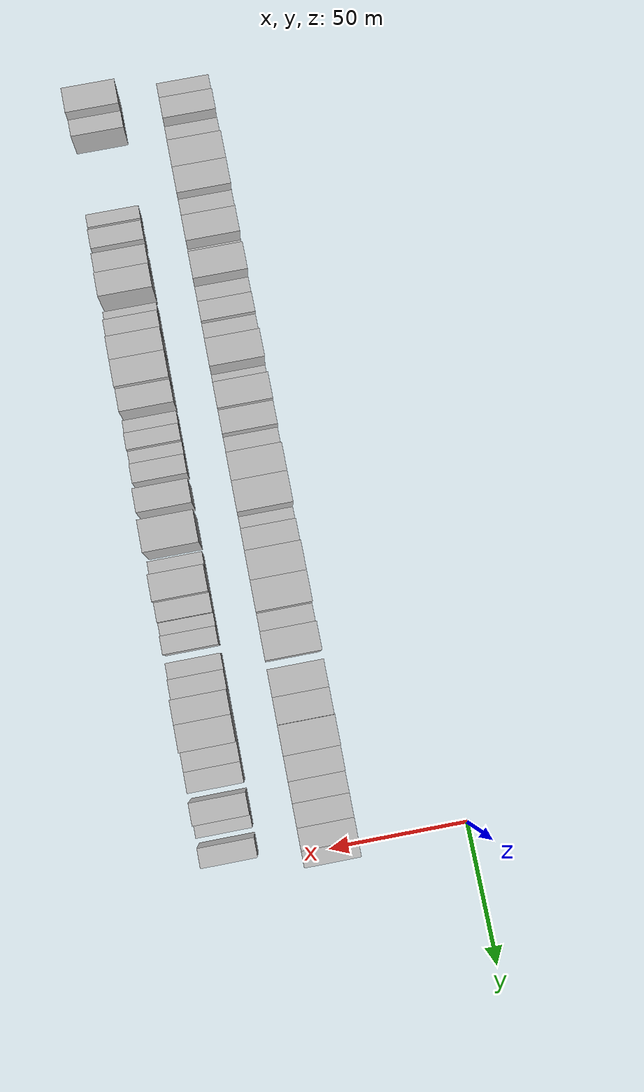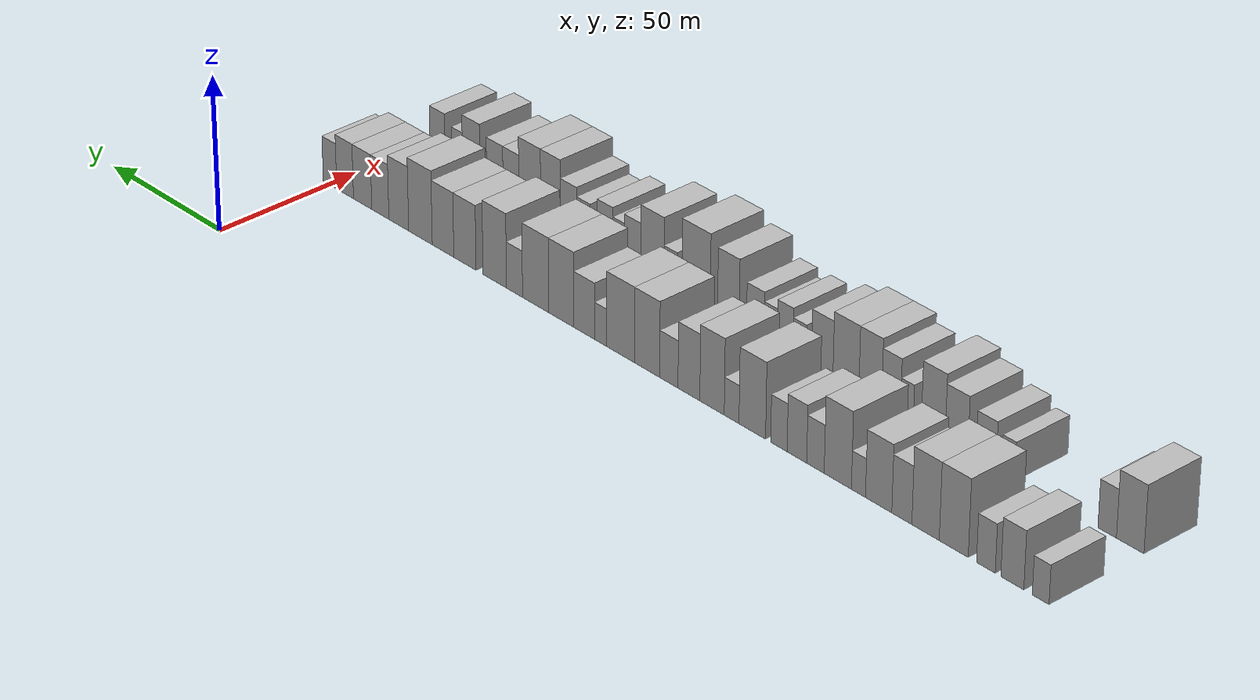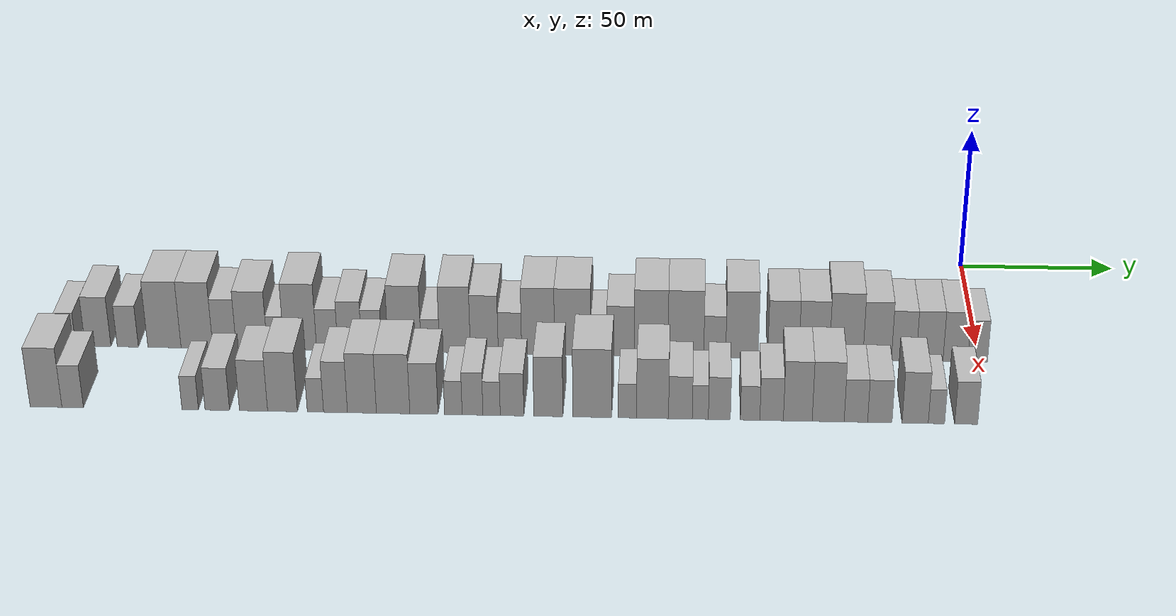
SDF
<sdf version="1.6">
 <world name="default">
  <model name="building_1">
   <static>1</static>
   <pose>50.0000 -287.0523 0 0.000000 0.000000 0.000000</pose>
   <link name="link">
    <pose>0 0 6.00 0 0 0</pose>
    <collision name="collision"><geometry><box><size>20.0000 5.8953 12.0000</size></box></geometry></collision>
    <visual name="visual">
     <cast_shadows>0</cast_shadows>
     <geometry><box><size>20.0000 5.8953 12.0000</size></box></geometry>
     <material>
      <script>
       <uri>model://HANNAS_wall/materials/scripts</uri>
       <uri>model://HANNAS_wall/materials/textures</uri>
       <name>vrc/HANNAS_wall</name>
      </script>
     </material>
    </visual>
   </link>
  </model>
  <model name="building_2">
   <static>1</static>
   <pose>50.0000 -277.0093 0 0.000000 0.000000 0.000000</pose>
   <link name="link">
    <pose>0 0 9.00 0 0 0</pose>
    <collision name="collision"><geometry><box><size>20.0000 8.1908 18.0000</size></box></geometry></collision>
    <visual name="visual">
     <cast_shadows>0</cast_shadows>
     <geometry><box><size>20.0000 8.1908 18.0000</size></box></geometry>
     <material>
      <script>
       <uri>model://HANNAS_wall/materials/scripts</uri>
       <uri>model://HANNAS_wall/materials/textures</uri>
       <name>vrc/HANNAS_wall</name>
      </script>
     </material>
    </visual>
   </link>
  </model>
  <model name="building_3">
   <static>1</static>
   <pose>50.0000 -267.5539 0 0.000000 0.000000 0.000000</pose>
   <link name="link">
    <pose>0 0 7.50 0 0 0</pose>
    <collision name="collision"><geometry><box><size>20.0000 6.7200 15.0000</size></box></geometry></collision>
    <visual name="visual">
     <cast_shadows>0</cast_shadows>
     <geometry><box><size>20.0000 6.7200 15.0000</size></box></geometry>
     <material>
      <script>
       <uri>model://HANNAS_wall/materials/scripts</uri>
       <uri>model://HANNAS_wall/materials/textures</uri>
       <name>vrc/HANNAS_wall</name>
      </script>
     </material>
    </visual>
   </link>
  </model>
  <model name="building_4">
   <static>1</static>
   <pose>50.0000 -255.9234 0 0.000000 0.000000 0.000000</pose>
   <link name="link">
    <pose>0 0 12.00 0 0 0</pose>
    <collision name="collision"><geometry><box><size>20.0000 10.5409 24.0000</size></box></geometry></collision>
    <visual name="visual">
     <cast_shadows>0</cast_shadows>
     <geometry><box><size>20.0000 10.5409 24.0000</size></box></geometry>
     <material>
      <script>
       <uri>model://HANNAS_wall/materials/scripts</uri>
       <uri>model://HANNAS_wall/materials/textures</uri>
       <name>vrc/HANNAS_wall</name>
      </script>
     </material>
    </visual>
   </link>
  </model>
  <model name="building_5">
   <static>1</static>
   <pose>50.0000 -245.6184 0 0.000000 0.000000 0.000000</pose>
   <link name="link">
    <pose>0 0 12.00 0 0 0</pose>
    <collision name="collision"><geometry><box><size>20.0000 10.0692 24.0000</size></box></geometry></collision>
    <visual name="visual">
     <cast_shadows>0</cast_shadows>
     <geometry><box><size>20.0000 10.0692 24.0000</size></box></geometry>
     <material>
      <script>
       <uri>model://HANNAS_wall/materials/scripts</uri>
       <uri>model://HANNAS_wall/materials/textures</uri>
       <name>vrc/HANNAS_wall</name>
      </script>
     </material>
    </visual>
   </link>
  </model>
  <model name="building_6">
   <static>1</static>
   <pose>50.0000 -236.8694 0 0.000000 0.000000 0.000000</pose>
   <link name="link">
    <pose>0 0 9.00 0 0 0</pose>
    <collision name="collision"><geometry><box><size>20.0000 7.4288 18.0000</size></box></geometry></collision>
    <visual name="visual">
     <cast_shadows>0</cast_shadows>
     <geometry><box><size>20.0000 7.4288 18.0000</size></box></geometry>
     <material>
      <script>
       <uri>model://HANNAS_wall/materials/scripts</uri>
       <uri>model://HANNAS_wall/materials/textures</uri>
       <name>vrc/HANNAS_wall</name>
      </script>
     </material>
    </visual>
   </link>
  </model>
  <model name="building_7">
   <static>1</static>
   <pose>50.0000 -228.2366 0 0.000000 0.000000 0.000000</pose>
   <link name="link">
    <pose>0 0 10.50 0 0 0</pose>
    <collision name="collision"><geometry><box><size>20.0000 9.8366 21.0000</size></box></geometry></collision>
    <visual name="visual">
     <cast_shadows>0</cast_shadows>
     <geometry><box><size>20.0000 9.8366 21.0000</size></box></geometry>
     <material>
      <script>
       <uri>model://HANNAS_wall/materials/scripts</uri>
       <uri>model://HANNAS_wall/materials/textures</uri>
       <name>vrc/HANNAS_wall</name>
      </script>
     </material>
    </visual>
   </link>
  </model>
  <model name="building_8">
   <static>1</static>
   <pose>50.0000 -220.6648 0 0.000000 0.000000 0.000000</pose>
   <link name="link">
    <pose>0 0 6.00 0 0 0</pose>
    <collision name="collision"><geometry><box><size>20.0000 5.3072 12.0000</size></box></geometry></collision>
    <visual name="visual">
     <cast_shadows>0</cast_shadows>
     <geometry><box><size>20.0000 5.3072 12.0000</size></box></geometry>
     <material>
      <script>
       <uri>model://HANNAS_wall/materials/scripts</uri>
       <uri>model://HANNAS_wall/materials/textures</uri>
       <name>vrc/HANNAS_wall</name>
      </script>
     </material>
    </visual>
   </link>
  </model>
  <model name="building_9">
   <static>1</static>
   <pose>50.0000 -212.8576 0 0.000000 0.000000 0.000000</pose>
   <link name="link">
    <pose>0 0 12.00 0 0 0</pose>
    <collision name="collision"><geometry><box><size>20.0000 10.3071 24.0000</size></box></geometry></collision>
    <visual name="visual">
     <cast_shadows>0</cast_shadows>
     <geometry><box><size>20.0000 10.3071 24.0000</size></box></geometry>
     <material>
      <script>
       <uri>model://HANNAS_wall/materials/scripts</uri>
       <uri>model://HANNAS_wall/materials/textures</uri>
       <name>vrc/HANNAS_wall</name>
      </script>
     </material>
    </visual>
   </link>
  </model>
  <model name="building_10">
   <static>1</static>
   <pose>50.0000 -204.3506 0 0.000000 0.000000 0.000000</pose>
   <link name="link">
    <pose>0 0 7.50 0 0 0</pose>
    <collision name="collision"><geometry><box><size>20.0000 6.7071 15.0000</size></box></geometry></collision>
    <visual name="visual">
     <cast_shadows>0</cast_shadows>
     <geometry><box><size>20.0000 6.7071 15.0000</size></box></geometry>
     <material>
      <script>
       <uri>model://HANNAS_wall/materials/scripts</uri>
       <uri>model://HANNAS_wall/materials/textures</uri>
       <name>vrc/HANNAS_wall</name>
      </script>
     </material>
    </visual>
   </link>
  </model>
  <model name="building_11">
   <static>1</static>
   <pose>50.0000 -197.2316 0 0.000000 0.000000 0.000000</pose>
   <link name="link">
    <pose>0 0 9.00 0 0 0</pose>
    <collision name="collision"><geometry><box><size>20.0000 7.5308 18.0000</size></box></geometry></collision>
    <visual name="visual">
     <cast_shadows>0</cast_shadows>
     <geometry><box><size>20.0000 7.5308 18.0000</size></box></geometry>
     <material>
      <script>
       <uri>model://HANNAS_wall/materials/scripts</uri>
       <uri>model://HANNAS_wall/materials/textures</uri>
       <name>vrc/HANNAS_wall</name>
      </script>
     </material>
    </visual>
   </link>
  </model>
  <model name="building_12">
   <static>1</static>
   <pose>50.0000 -190.2864 0 0.000000 0.000000 0.000000</pose>
   <link name="link">
    <pose>0 0 7.50 0 0 0</pose>
    <collision name="collision"><geometry><box><size>20.0000 6.3596 15.0000</size></box></geometry></collision>
    <visual name="visual">
     <cast_shadows>0</cast_shadows>
     <geometry><box><size>20.0000 6.3596 15.0000</size></box></geometry>
     <material>
      <script>
       <uri>model://HANNAS_wall/materials/scripts</uri>
       <uri>model://HANNAS_wall/materials/textures</uri>
       <name>vrc/HANNAS_wall</name>
      </script>
     </material>
    </visual>
   </link>
  </model>
  <model name="building_13">
   <static>1</static>
   <pose>50.0000 -179.9060 0 0.000000 0.000000 0.000000</pose>
   <link name="link">
    <pose>0 0 12.00 0 0 0</pose>
    <collision name="collision"><geometry><box><size>20.0000 10.4011 24.0000</size></box></geometry></collision>
    <visual name="visual">
     <cast_shadows>0</cast_shadows>
     <geometry><box><size>20.0000 10.4011 24.0000</size></box></geometry>
     <material>
      <script>
       <uri>model://HANNAS_wall/materials/scripts</uri>
       <uri>model://HANNAS_wall/materials/textures</uri>
       <name>vrc/HANNAS_wall</name>
      </script>
     </material>
    </visual>
   </link>
  </model>
  <model name="building_14">
   <static>1</static>
   <pose>50.0000 -171.7986 0 0.000000 0.000000 0.000000</pose>
   <link name="link">
    <pose>0 0 6.00 0 0 0</pose>
    <collision name="collision"><geometry><box><size>20.0000 5.8136 12.0000</size></box></geometry></collision>
    <visual name="visual">
     <cast_shadows>0</cast_shadows>
     <geometry><box><size>20.0000 5.8136 12.0000</size></box></geometry>
     <material>
      <script>
       <uri>model://HANNAS_wall/materials/scripts</uri>
       <uri>model://HANNAS_wall/materials/textures</uri>
       <name>vrc/HANNAS_wall</name>
      </script>
     </material>
    </visual>
   </link>
  </model>
  <model name="building_15">
   <static>1</static>
   <pose>50.0000 -164.0420 0 0.000000 0.000000 0.000000</pose>
   <link name="link">
    <pose>0 0 12.00 0 0 0</pose>
    <collision name="collision"><geometry><box><size>20.0000 9.6997 24.0000</size></box></geometry></collision>
    <visual name="visual">
     <cast_shadows>0</cast_shadows>
     <geometry><box><size>20.0000 9.6997 24.0000</size></box></geometry>
     <material>
      <script>
       <uri>model://HANNAS_wall/materials/scripts</uri>
       <uri>model://HANNAS_wall/materials/textures</uri>
       <name>vrc/HANNAS_wall</name>
      </script>
     </material>
    </visual>
   </link>
  </model>
  <model name="building_16">
   <static>1</static>
   <pose>50.0000 -154.8154 0 0.000000 0.000000 0.000000</pose>
   <link name="link">
    <pose>0 0 10.50 0 0 0</pose>
    <collision name="collision"><geometry><box><size>20.0000 8.7535 21.0000</size></box></geometry></collision>
    <visual name="visual">
     <cast_shadows>0</cast_shadows>
     <geometry><box><size>20.0000 8.7535 21.0000</size></box></geometry>
     <material>
      <script>
       <uri>model://HANNAS_wall/materials/scripts</uri>
       <uri>model://HANNAS_wall/materials/textures</uri>
       <name>vrc/HANNAS_wall</name>
      </script>
     </material>
    </visual>
   </link>
  </model>
  <model name="building_17">
   <static>1</static>
   <pose>50.0000 -146.7566 0 0.000000 0.000000 0.000000</pose>
   <link name="link">
    <pose>0 0 7.50 0 0 0</pose>
    <collision name="collision"><geometry><box><size>20.0000 7.3642 15.0000</size></box></geometry></collision>
    <visual name="visual">
     <cast_shadows>0</cast_shadows>
     <geometry><box><size>20.0000 7.3642 15.0000</size></box></geometry>
     <material>
      <script>
       <uri>model://HANNAS_wall/materials/scripts</uri>
       <uri>model://HANNAS_wall/materials/textures</uri>
       <name>vrc/HANNAS_wall</name>
      </script>
     </material>
    </visual>
   </link>
  </model>
  <model name="building_18">
   <static>1</static>
   <pose>50.0000 -137.8988 0 0.000000 0.000000 0.000000</pose>
   <link name="link">
    <pose>0 0 12.00 0 0 0</pose>
    <collision name="collision"><geometry><box><size>20.0000 10.3513 24.0000</size></box></geometry></collision>
    <visual name="visual">
     <cast_shadows>0</cast_shadows>
     <geometry><box><size>20.0000 10.3513 24.0000</size></box></geometry>
     <material>
      <script>
       <uri>model://HANNAS_wall/materials/scripts</uri>
       <uri>model://HANNAS_wall/materials/textures</uri>
       <name>vrc/HANNAS_wall</name>
      </script>
     </material>
    </visual>
   </link>
  </model>
  <model name="building_19">
   <static>1</static>
   <pose>50.0000 -127.0697 0 0.000000 0.000000 0.000000</pose>
   <link name="link">
    <pose>0 0 12.00 0 0 0</pose>
    <collision name="collision"><geometry><box><size>20.0000 11.3070 24.0000</size></box></geometry></collision>
    <visual name="visual">
     <cast_shadows>0</cast_shadows>
     <geometry><box><size>20.0000 11.3070 24.0000</size></box></geometry>
     <material>
      <script>
       <uri>model://HANNAS_wall/materials/scripts</uri>
       <uri>model://HANNAS_wall/materials/textures</uri>
       <name>vrc/HANNAS_wall</name>
      </script>
     </material>
    </visual>
   </link>
  </model>
  <model name="building_20">
   <static>1</static>
   <pose>50.0000 -118.8807 0 0.000000 0.000000 0.000000</pose>
   <link name="link">
    <pose>0 0 6.00 0 0 0</pose>
    <collision name="collision"><geometry><box><size>20.0000 5.0709 12.0000</size></box></geometry></collision>
    <visual name="visual">
     <cast_shadows>0</cast_shadows>
     <geometry><box><size>20.0000 5.0709 12.0000</size></box></geometry>
     <material>
      <script>
       <uri>model://HANNAS_wall/materials/scripts</uri>
       <uri>model://HANNAS_wall/materials/textures</uri>
       <name>vrc/HANNAS_wall</name>
      </script>
     </material>
    </visual>
   </link>
  </model>
  <model name="building_21">
   <static>1</static>
   <pose>50.0000 -112.0234 0 0.000000 0.000000 0.000000</pose>
   <link name="link">
    <pose>0 0 9.00 0 0 0</pose>
    <collision name="collision"><geometry><box><size>20.0000 8.6437 18.0000</size></box></geometry></collision>
    <visual name="visual">
     <cast_shadows>0</cast_shadows>
     <geometry><box><size>20.0000 8.6437 18.0000</size></box></geometry>
     <material>
      <script>
       <uri>model://HANNAS_wall/materials/scripts</uri>
       <uri>model://HANNAS_wall/materials/textures</uri>
       <name>vrc/HANNAS_wall</name>
      </script>
     </material>
    </visual>
   </link>
  </model>
  <model name="building_22">
   <static>1</static>
   <pose>50.0000 -102.4219 0 0.000000 0.000000 0.000000</pose>
   <link name="link">
    <pose>0 0 12.00 0 0 0</pose>
    <collision name="collision"><geometry><box><size>20.0000 10.5594 24.0000</size></box></geometry></collision>
    <visual name="visual">
     <cast_shadows>0</cast_shadows>
     <geometry><box><size>20.0000 10.5594 24.0000</size></box></geometry>
     <material>
      <script>
       <uri>model://HANNAS_wall/materials/scripts</uri>
       <uri>model://HANNAS_wall/materials/textures</uri>
       <name>vrc/HANNAS_wall</name>
      </script>
     </material>
    </visual>
   </link>
  </model>
  <model name="building_23">
   <static>1</static>
   <pose>50.0000 -91.5550 0 0.000000 0.000000 0.000000</pose>
   <link name="link">
    <pose>0 0 12.00 0 0 0</pose>
    <collision name="collision"><geometry><box><size>20.0000 11.1743 24.0000</size></box></geometry></collision>
    <visual name="visual">
     <cast_shadows>0</cast_shadows>
     <geometry><box><size>20.0000 11.1743 24.0000</size></box></geometry>
     <material>
      <script>
       <uri>model://HANNAS_wall/materials/scripts</uri>
       <uri>model://HANNAS_wall/materials/textures</uri>
       <name>vrc/HANNAS_wall</name>
      </script>
     </material>
    </visual>
   </link>
  </model>
  <model name="building_24">
   <static>1</static>
   <pose>50.0000 -82.5358 0 0.000000 0.000000 0.000000</pose>
   <link name="link">
    <pose>0 0 7.50 0 0 0</pose>
    <collision name="collision"><geometry><box><size>20.0000 6.8641 15.0000</size></box></geometry></collision>
    <visual name="visual">
     <cast_shadows>0</cast_shadows>
     <geometry><box><size>20.0000 6.8641 15.0000</size></box></geometry>
     <material>
      <script>
       <uri>model://HANNAS_wall/materials/scripts</uri>
       <uri>model://HANNAS_wall/materials/textures</uri>
       <name>vrc/HANNAS_wall</name>
      </script>
     </material>
    </visual>
   </link>
  </model>
  <model name="building_25">
   <static>1</static>
   <pose>50.0000 -74.0239 0 0.000000 0.000000 0.000000</pose>
   <link name="link">
    <pose>0 0 12.00 0 0 0</pose>
    <collision name="collision"><geometry><box><size>20.0000 10.1597 24.0000</size></box></geometry></collision>
    <visual name="visual">
     <cast_shadows>0</cast_shadows>
     <geometry><box><size>20.0000 10.1597 24.0000</size></box></geometry>
     <material>
      <script>
       <uri>model://HANNAS_wall/materials/scripts</uri>
       <uri>model://HANNAS_wall/materials/textures</uri>
       <name>vrc/HANNAS_wall</name>
      </script>
     </material>
    </visual>
   </link>
  </model>
  <model name="building_26">
   <static>1</static>
   <pose>50.0000 -61.0833 0 0.000000 0.000000 0.000000</pose>
   <link name="link">
    <pose>0 0 10.50 0 0 0</pose>
    <collision name="collision"><geometry><box><size>20.0000 9.7216 21.0000</size></box></geometry></collision>
    <visual name="visual">
     <cast_shadows>0</cast_shadows>
     <geometry><box><size>20.0000 9.7216 21.0000</size></box></geometry>
     <material>
      <script>
       <uri>model://HANNAS_wall/materials/scripts</uri>
       <uri>model://HANNAS_wall/materials/textures</uri>
       <name>vrc/HANNAS_wall</name>
      </script>
     </material>
    </visual>
   </link>
  </model>
  <model name="building_27">
   <static>1</static>
   <pose>50.0000 -51.4662 0 0.000000 0.000000 0.000000</pose>
   <link name="link">
    <pose>0 0 10.50 0 0 0</pose>
    <collision name="collision"><geometry><box><size>20.0000 9.5127 21.0000</size></box></geometry></collision>
    <visual name="visual">
     <cast_shadows>0</cast_shadows>
     <geometry><box><size>20.0000 9.5127 21.0000</size></box></geometry>
     <material>
      <script>
       <uri>model://HANNAS_wall/materials/scripts</uri>
       <uri>model://HANNAS_wall/materials/textures</uri>
       <name>vrc/HANNAS_wall</name>
      </script>
     </material>
    </visual>
   </link>
  </model>
  <model name="building_28">
   <static>1</static>
   <pose>50.0000 -41.4690 0 0.000000 0.000000 0.000000</pose>
   <link name="link">
    <pose>0 0 12.00 0 0 0</pose>
    <collision name="collision"><geometry><box><size>20.0000 10.4816 24.0000</size></box></geometry></collision>
    <visual name="visual">
     <cast_shadows>0</cast_shadows>
     <geometry><box><size>20.0000 10.4816 24.0000</size></box></geometry>
     <material>
      <script>
       <uri>model://HANNAS_wall/materials/scripts</uri>
       <uri>model://HANNAS_wall/materials/textures</uri>
       <name>vrc/HANNAS_wall</name>
      </script>
     </material>
    </visual>
   </link>
  </model>
  <model name="building_29">
   <static>1</static>
   <pose>50.0000 -31.7760 0 0.000000 0.000000 0.000000</pose>
   <link name="link">
    <pose>0 0 10.50 0 0 0</pose>
    <collision name="collision"><geometry><box><size>20.0000 8.9044 21.0000</size></box></geometry></collision>
    <visual name="visual">
     <cast_shadows>0</cast_shadows>
     <geometry><box><size>20.0000 8.9044 21.0000</size></box></geometry>
     <material>
      <script>
       <uri>model://HANNAS_wall/materials/scripts</uri>
       <uri>model://HANNAS_wall/materials/textures</uri>
       <name>vrc/HANNAS_wall</name>
      </script>
     </material>
    </visual>
   </link>
  </model>
  <model name="building_30">
   <static>1</static>
   <pose>50.0000 -23.4686 0 0.000000 0.000000 0.000000</pose>
   <link name="link">
    <pose>0 0 9.00 0 0 0</pose>
    <collision name="collision"><geometry><box><size>20.0000 7.7102 18.0000</size></box></geometry></collision>
    <visual name="visual">
     <cast_shadows>0</cast_shadows>
     <geometry><box><size>20.0000 7.7102 18.0000</size></box></geometry>
     <material>
      <script>
       <uri>model://HANNAS_wall/materials/scripts</uri>
       <uri>model://HANNAS_wall/materials/textures</uri>
       <name>vrc/HANNAS_wall</name>
      </script>
     </material>
    </visual>
   </link>
  </model>
  <model name="building_31">
   <static>1</static>
   <pose>50.0000 -15.4387 0 0.000000 0.000000 0.000000</pose>
   <link name="link">
    <pose>0 0 9.00 0 0 0</pose>
    <collision name="collision"><geometry><box><size>20.0000 8.3496 18.0000</size></box></geometry></collision>
    <visual name="visual">
     <cast_shadows>0</cast_shadows>
     <geometry><box><size>20.0000 8.3496 18.0000</size></box></geometry>
     <material>
      <script>
       <uri>model://HANNAS_wall/materials/scripts</uri>
       <uri>model://HANNAS_wall/materials/textures</uri>
       <name>vrc/HANNAS_wall</name>
      </script>
     </material>
    </visual>
   </link>
  </model>
  <model name="building_32">
   <static>1</static>
   <pose>50.0000 -7.4172 0 0.000000 0.000000 0.000000</pose>
   <link name="link">
    <pose>0 0 9.00 0 0 0</pose>
    <collision name="collision"><geometry><box><size>20.0000 7.6935 18.0000</size></box></geometry></collision>
    <visual name="visual">
     <cast_shadows>0</cast_shadows>
     <geometry><box><size>20.0000 7.6935 18.0000</size></box></geometry>
     <material>
      <script>
       <uri>model://HANNAS_wall/materials/scripts</uri>
       <uri>model://HANNAS_wall/materials/textures</uri>
       <name>vrc/HANNAS_wall</name>
      </script>
     </material>
    </visual>
   </link>
  </model>
  <model name="building_33">
   <static>1</static>
   <pose>50.0000 -0.4919 0 0.000000 0.000000 0.000000</pose>
   <link name="link">
    <pose>0 0 7.50 0 0 0</pose>
    <collision name="collision"><geometry><box><size>20.0000 6.1572 15.0000</size></box></geometry></collision>
    <visual name="visual">
     <cast_shadows>0</cast_shadows>
     <geometry><box><size>20.0000 6.1572 15.0000</size></box></geometry>
     <material>
      <script>
       <uri>model://HANNAS_wall/materials/scripts</uri>
       <uri>model://HANNAS_wall/materials/textures</uri>
       <name>vrc/HANNAS_wall</name>
      </script>
     </material>
    </visual>
   </link>
  </model>
  <model name="building_64">
   <static>1</static>
   <pose>85.0000 -285.1427 0 0.000000 0.000000 0.000000</pose>
   <link name="link">
    <pose>0 0 10.50 0 0 0</pose>
    <collision name="collision"><geometry><box><size>20.0000 9.7145 21.0000</size></box></geometry></collision>
    <visual name="visual">
     <cast_shadows>0</cast_shadows>
     <geometry><box><size>20.0000 9.7145 21.0000</size></box></geometry>
     <material>
      <script>
       <uri>model://HANNAS_wall/materials/scripts</uri>
       <uri>model://HANNAS_wall/materials/textures</uri>
       <name>vrc/HANNAS_wall</name>
      </script>
     </material>
    </visual>
   </link>
  </model>
  <model name="building_65">
   <static>1</static>
   <pose>85.0000 -277.0008 0 0.000000 0.000000 0.000000</pose>
   <link name="link">
    <pose>0 0 7.50 0 0 0</pose>
    <collision name="collision"><geometry><box><size>20.0000 6.5693 15.0000</size></box></geometry></collision>
    <visual name="visual">
     <cast_shadows>0</cast_shadows>
     <geometry><box><size>20.0000 6.5693 15.0000</size></box></geometry>
     <material>
      <script>
       <uri>model://HANNAS_wall/materials/scripts</uri>
       <uri>model://HANNAS_wall/materials/textures</uri>
       <name>vrc/HANNAS_wall</name>
      </script>
     </material>
    </visual>
   </link>
  </model>
  <model name="building_66">
   <static>1</static>
   <pose>85.0000 -241.1843 0 0.000000 0.000000 0.000000</pose>
   <link name="link">
    <pose>0 0 6.00 0 0 0</pose>
    <collision name="collision"><geometry><box><size>20.0000 5.0213 12.0000</size></box></geometry></collision>
    <visual name="visual">
     <cast_shadows>0</cast_shadows>
     <geometry><box><size>20.0000 5.0213 12.0000</size></box></geometry>
     <material>
      <script>
       <uri>model://HANNAS_wall/materials/scripts</uri>
       <uri>model://HANNAS_wall/materials/textures</uri>
       <name>vrc/HANNAS_wall</name>
      </script>
     </material>
    </visual>
   </link>
  </model>
  <model name="building_67">
   <static>1</static>
   <pose>85.0000 -232.9469 0 0.000000 0.000000 0.000000</pose>
   <link name="link">
    <pose>0 0 7.50 0 0 0</pose>
    <collision name="collision"><geometry><box><size>20.0000 7.4535 15.0000</size></box></geometry></collision>
    <visual name="visual">
     <cast_shadows>0</cast_shadows>
     <geometry><box><size>20.0000 7.4535 15.0000</size></box></geometry>
     <material>
      <script>
       <uri>model://HANNAS_wall/materials/scripts</uri>
       <uri>model://HANNAS_wall/materials/textures</uri>
       <name>vrc/HANNAS_wall</name>
      </script>
     </material>
    </visual>
   </link>
  </model>
  <model name="building_68">
   <static>1</static>
   <pose>85.0000 -221.9447 0 0.000000 0.000000 0.000000</pose>
   <link name="link">
    <pose>0 0 9.00 0 0 0</pose>
    <collision name="collision"><geometry><box><size>20.0000 8.5510 18.0000</size></box></geometry></collision>
    <visual name="visual">
     <cast_shadows>0</cast_shadows>
     <geometry><box><size>20.0000 8.5510 18.0000</size></box></geometry>
     <material>
      <script>
       <uri>model://HANNAS_wall/materials/scripts</uri>
       <uri>model://HANNAS_wall/materials/textures</uri>
       <name>vrc/HANNAS_wall</name>
      </script>
     </material>
    </visual>
   </link>
  </model>
  <model name="building_69">
   <static>1</static>
   <pose>85.0000 -213.1455 0 0.000000 0.000000 0.000000</pose>
   <link name="link">
    <pose>0 0 10.50 0 0 0</pose>
    <collision name="collision"><geometry><box><size>20.0000 9.0474 21.0000</size></box></geometry></collision>
    <visual name="visual">
     <cast_shadows>0</cast_shadows>
     <geometry><box><size>20.0000 9.0474 21.0000</size></box></geometry>
     <material>
      <script>
       <uri>model://HANNAS_wall/materials/scripts</uri>
       <uri>model://HANNAS_wall/materials/textures</uri>
       <name>vrc/HANNAS_wall</name>
      </script>
     </material>
    </visual>
   </link>
  </model>
  <model name="building_70">
   <static>1</static>
   <pose>85.0000 -203.1609 0 0.000000 0.000000 0.000000</pose>
   <link name="link">
    <pose>0 0 6.00 0 0 0</pose>
    <collision name="collision"><geometry><box><size>20.0000 4.9219 12.0000</size></box></geometry></collision>
    <visual name="visual">
     <cast_shadows>0</cast_shadows>
     <geometry><box><size>20.0000 4.9219 12.0000</size></box></geometry>
     <material>
      <script>
       <uri>model://HANNAS_wall/materials/scripts</uri>
       <uri>model://HANNAS_wall/materials/textures</uri>
       <name>vrc/HANNAS_wall</name>
      </script>
     </material>
    </visual>
   </link>
  </model>
  <model name="building_71">
   <static>1</static>
   <pose>85.0000 -197.0720 0 0.000000 0.000000 0.000000</pose>
   <link name="link">
    <pose>0 0 9.00 0 0 0</pose>
    <collision name="collision"><geometry><box><size>20.0000 7.2559 18.0000</size></box></geometry></collision>
    <visual name="visual">
     <cast_shadows>0</cast_shadows>
     <geometry><box><size>20.0000 7.2559 18.0000</size></box></geometry>
     <material>
      <script>
       <uri>model://HANNAS_wall/materials/scripts</uri>
       <uri>model://HANNAS_wall/materials/textures</uri>
       <name>vrc/HANNAS_wall</name>
      </script>
     </material>
    </visual>
   </link>
  </model>
  <model name="building_72">
   <static>1</static>
   <pose>85.0000 -189.0561 0 0.000000 0.000000 0.000000</pose>
   <link name="link">
    <pose>0 0 10.50 0 0 0</pose>
    <collision name="collision"><geometry><box><size>20.0000 8.7758 21.0000</size></box></geometry></collision>
    <visual name="visual">
     <cast_shadows>0</cast_shadows>
     <geometry><box><size>20.0000 8.7758 21.0000</size></box></geometry>
     <material>
      <script>
       <uri>model://HANNAS_wall/materials/scripts</uri>
       <uri>model://HANNAS_wall/materials/textures</uri>
       <name>vrc/HANNAS_wall</name>
      </script>
     </material>
    </visual>
   </link>
  </model>
  <model name="building_73">
   <static>1</static>
   <pose>85.0000 -179.6008 0 0.000000 0.000000 0.000000</pose>
   <link name="link">
    <pose>0 0 10.50 0 0 0</pose>
    <collision name="collision"><geometry><box><size>20.0000 10.1349 21.0000</size></box></geometry></collision>
    <visual name="visual">
     <cast_shadows>0</cast_shadows>
     <geometry><box><size>20.0000 10.1349 21.0000</size></box></geometry>
     <material>
      <script>
       <uri>model://HANNAS_wall/materials/scripts</uri>
       <uri>model://HANNAS_wall/materials/textures</uri>
       <name>vrc/HANNAS_wall</name>
      </script>
     </material>
    </visual>
   </link>
  </model>
  <model name="building_74">
   <static>1</static>
   <pose>85.0000 -170.2790 0 0.000000 0.000000 0.000000</pose>
   <link name="link">
    <pose>0 0 9.00 0 0 0</pose>
    <collision name="collision"><geometry><box><size>20.0000 8.5088 18.0000</size></box></geometry></collision>
    <visual name="visual">
     <cast_shadows>0</cast_shadows>
     <geometry><box><size>20.0000 8.5088 18.0000</size></box></geometry>
     <material>
      <script>
       <uri>model://HANNAS_wall/materials/scripts</uri>
       <uri>model://HANNAS_wall/materials/textures</uri>
       <name>vrc/HANNAS_wall</name>
      </script>
     </material>
    </visual>
   </link>
  </model>
  <model name="building_75">
   <static>1</static>
   <pose>85.0000 -161.3704 0 0.000000 0.000000 0.000000</pose>
   <link name="link">
    <pose>0 0 6.00 0 0 0</pose>
    <collision name="collision"><geometry><box><size>20.0000 5.3084 12.0000</size></box></geometry></collision>
    <visual name="visual">
     <cast_shadows>0</cast_shadows>
     <geometry><box><size>20.0000 5.3084 12.0000</size></box></geometry>
     <material>
      <script>
       <uri>model://HANNAS_wall/materials/scripts</uri>
       <uri>model://HANNAS_wall/materials/textures</uri>
       <name>vrc/HANNAS_wall</name>
      </script>
     </material>
    </visual>
   </link>
  </model>
  <model name="building_76">
   <static>1</static>
   <pose>85.0000 -155.5832 0 0.000000 0.000000 0.000000</pose>
   <link name="link">
    <pose>0 0 7.50 0 0 0</pose>
    <collision name="collision"><geometry><box><size>20.0000 6.2659 15.0000</size></box></geometry></collision>
    <visual name="visual">
     <cast_shadows>0</cast_shadows>
     <geometry><box><size>20.0000 6.2659 15.0000</size></box></geometry>
     <material>
      <script>
       <uri>model://HANNAS_wall/materials/scripts</uri>
       <uri>model://HANNAS_wall/materials/textures</uri>
       <name>vrc/HANNAS_wall</name>
      </script>
     </material>
    </visual>
   </link>
  </model>
  <model name="building_77">
   <static>1</static>
   <pose>85.0000 -149.8334 0 0.000000 0.000000 0.000000</pose>
   <link name="link">
    <pose>0 0 6.00 0 0 0</pose>
    <collision name="collision"><geometry><box><size>20.0000 5.2338 12.0000</size></box></geometry></collision>
    <visual name="visual">
     <cast_shadows>0</cast_shadows>
     <geometry><box><size>20.0000 5.2338 12.0000</size></box></geometry>
     <material>
      <script>
       <uri>model://HANNAS_wall/materials/scripts</uri>
       <uri>model://HANNAS_wall/materials/textures</uri>
       <name>vrc/HANNAS_wall</name>
      </script>
     </material>
    </visual>
   </link>
  </model>
  <model name="building_78">
   <static>1</static>
   <pose>85.0000 -143.6524 0 0.000000 0.000000 0.000000</pose>
   <link name="link">
    <pose>0 0 7.50 0 0 0</pose>
    <collision name="collision"><geometry><box><size>20.0000 7.1282 15.0000</size></box></geometry></collision>
    <visual name="visual">
     <cast_shadows>0</cast_shadows>
     <geometry><box><size>20.0000 7.1282 15.0000</size></box></geometry>
     <material>
      <script>
       <uri>model://HANNAS_wall/materials/scripts</uri>
       <uri>model://HANNAS_wall/materials/textures</uri>
       <name>vrc/HANNAS_wall</name>
      </script>
     </material>
    </visual>
   </link>
  </model>
  <model name="building_79">
   <static>1</static>
   <pose>85.0000 -132.7029 0 0.000000 0.000000 0.000000</pose>
   <link name="link">
    <pose>0 0 10.50 0 0 0</pose>
    <collision name="collision"><geometry><box><size>20.0000 8.7709 21.0000</size></box></geometry></collision>
    <visual name="visual">
     <cast_shadows>0</cast_shadows>
     <geometry><box><size>20.0000 8.7709 21.0000</size></box></geometry>
     <material>
      <script>
       <uri>model://HANNAS_wall/materials/scripts</uri>
       <uri>model://HANNAS_wall/materials/textures</uri>
       <name>vrc/HANNAS_wall</name>
      </script>
     </material>
    </visual>
   </link>
  </model>
  <model name="building_80">
   <static>1</static>
   <pose>85.0000 -119.4741 0 0.000000 0.000000 0.000000</pose>
   <link name="link">
    <pose>0 0 12.00 0 0 0</pose>
    <collision name="collision"><geometry><box><size>20.0000 11.6865 24.0000</size></box></geometry></collision>
    <visual name="visual">
     <cast_shadows>0</cast_shadows>
     <geometry><box><size>20.0000 11.6865 24.0000</size></box></geometry>
     <material>
      <script>
       <uri>model://HANNAS_wall/materials/scripts</uri>
       <uri>model://HANNAS_wall/materials/textures</uri>
       <name>vrc/HANNAS_wall</name>
      </script>
     </material>
    </visual>
   </link>
  </model>
  <model name="building_81">
   <static>1</static>
   <pose>85.0000 -108.8691 0 0.000000 0.000000 0.000000</pose>
   <link name="link">
    <pose>0 0 6.00 0 0 0</pose>
    <collision name="collision"><geometry><box><size>20.0000 5.5236 12.0000</size></box></geometry></collision>
    <visual name="visual">
     <cast_shadows>0</cast_shadows>
     <geometry><box><size>20.0000 5.5236 12.0000</size></box></geometry>
     <material>
      <script>
       <uri>model://HANNAS_wall/materials/scripts</uri>
       <uri>model://HANNAS_wall/materials/textures</uri>
       <name>vrc/HANNAS_wall</name>
      </script>
     </material>
    </visual>
   </link>
  </model>
  <model name="building_82">
   <static>1</static>
   <pose>85.0000 -101.3083 0 0.000000 0.000000 0.000000</pose>
   <link name="link">
    <pose>0 0 10.50 0 0 0</pose>
    <collision name="collision"><geometry><box><size>20.0000 9.5980 21.0000</size></box></geometry></collision>
    <visual name="visual">
     <cast_shadows>0</cast_shadows>
     <geometry><box><size>20.0000 9.5980 21.0000</size></box></geometry>
     <material>
      <script>
       <uri>model://HANNAS_wall/materials/scripts</uri>
       <uri>model://HANNAS_wall/materials/textures</uri>
       <name>vrc/HANNAS_wall</name>
      </script>
     </material>
    </visual>
   </link>
  </model>
  <model name="building_83">
   <static>1</static>
   <pose>85.0000 -92.9480 0 0.000000 0.000000 0.000000</pose>
   <link name="link">
    <pose>0 0 7.50 0 0 0</pose>
    <collision name="collision"><geometry><box><size>20.0000 7.1227 15.0000</size></box></geometry></collision>
    <visual name="visual">
     <cast_shadows>0</cast_shadows>
     <geometry><box><size>20.0000 7.1227 15.0000</size></box></geometry>
     <material>
      <script>
       <uri>model://HANNAS_wall/materials/scripts</uri>
       <uri>model://HANNAS_wall/materials/textures</uri>
       <name>vrc/HANNAS_wall</name>
      </script>
     </material>
    </visual>
   </link>
  </model>
  <model name="building_84">
   <static>1</static>
   <pose>85.0000 -86.9705 0 0.000000 0.000000 0.000000</pose>
   <link name="link">
    <pose>0 0 6.00 0 0 0</pose>
    <collision name="collision"><geometry><box><size>20.0000 4.8323 12.0000</size></box></geometry></collision>
    <visual name="visual">
     <cast_shadows>0</cast_shadows>
     <geometry><box><size>20.0000 4.8323 12.0000</size></box></geometry>
     <material>
      <script>
       <uri>model://HANNAS_wall/materials/scripts</uri>
       <uri>model://HANNAS_wall/materials/textures</uri>
       <name>vrc/HANNAS_wall</name>
      </script>
     </material>
    </visual>
   </link>
  </model>
  <model name="building_85">
   <static>1</static>
   <pose>85.0000 -81.2461 0 0.000000 0.000000 0.000000</pose>
   <link name="link">
    <pose>0 0 7.50 0 0 0</pose>
    <collision name="collision"><geometry><box><size>20.0000 6.6165 15.0000</size></box></geometry></collision>
    <visual name="visual">
     <cast_shadows>0</cast_shadows>
     <geometry><box><size>20.0000 6.6165 15.0000</size></box></geometry>
     <material>
      <script>
       <uri>model://HANNAS_wall/materials/scripts</uri>
       <uri>model://HANNAS_wall/materials/textures</uri>
       <name>vrc/HANNAS_wall</name>
      </script>
     </material>
    </visual>
   </link>
  </model>
  <model name="building_86">
   <static>1</static>
   <pose>85.0000 -72.0180 0 0.000000 0.000000 0.000000</pose>
   <link name="link">
    <pose>0 0 6.00 0 0 0</pose>
    <collision name="collision"><geometry><box><size>20.0000 5.8397 12.0000</size></box></geometry></collision>
    <visual name="visual">
     <cast_shadows>0</cast_shadows>
     <geometry><box><size>20.0000 5.8397 12.0000</size></box></geometry>
     <material>
      <script>
       <uri>model://HANNAS_wall/materials/scripts</uri>
       <uri>model://HANNAS_wall/materials/textures</uri>
       <name>vrc/HANNAS_wall</name>
      </script>
     </material>
    </visual>
   </link>
  </model>
  <model name="building_87">
   <static>1</static>
   <pose>85.0000 -65.5685 0 0.000000 0.000000 0.000000</pose>
   <link name="link">
    <pose>0 0 7.50 0 0 0</pose>
    <collision name="collision"><geometry><box><size>20.0000 7.0592 15.0000</size></box></geometry></collision>
    <visual name="visual">
     <cast_shadows>0</cast_shadows>
     <geometry><box><size>20.0000 7.0592 15.0000</size></box></geometry>
     <material>
      <script>
       <uri>model://HANNAS_wall/materials/scripts</uri>
       <uri>model://HANNAS_wall/materials/textures</uri>
       <name>vrc/HANNAS_wall</name>
      </script>
     </material>
    </visual>
   </link>
  </model>
  <model name="building_88">
   <static>1</static>
   <pose>85.0000 -57.7182 0 0.000000 0.000000 0.000000</pose>
   <link name="link">
    <pose>0 0 10.50 0 0 0</pose>
    <collision name="collision"><geometry><box><size>20.0000 8.6415 21.0000</size></box></geometry></collision>
    <visual name="visual">
     <cast_shadows>0</cast_shadows>
     <geometry><box><size>20.0000 8.6415 21.0000</size></box></geometry>
     <material>
      <script>
       <uri>model://HANNAS_wall/materials/scripts</uri>
       <uri>model://HANNAS_wall/materials/textures</uri>
       <name>vrc/HANNAS_wall</name>
      </script>
     </material>
    </visual>
   </link>
  </model>
  <model name="building_89">
   <static>1</static>
   <pose>85.0000 -48.6057 0 0.000000 0.000000 0.000000</pose>
   <link name="link">
    <pose>0 0 10.50 0 0 0</pose>
    <collision name="collision"><geometry><box><size>20.0000 9.5833 21.0000</size></box></geometry></collision>
    <visual name="visual">
     <cast_shadows>0</cast_shadows>
     <geometry><box><size>20.0000 9.5833 21.0000</size></box></geometry>
     <material>
      <script>
       <uri>model://HANNAS_wall/materials/scripts</uri>
       <uri>model://HANNAS_wall/materials/textures</uri>
       <name>vrc/HANNAS_wall</name>
      </script>
     </material>
    </visual>
   </link>
  </model>
  <model name="building_90">
   <static>1</static>
   <pose>85.0000 -40.3028 0 0.000000 0.000000 0.000000</pose>
   <link name="link">
    <pose>0 0 7.50 0 0 0</pose>
    <collision name="collision"><geometry><box><size>20.0000 7.0226 15.0000</size></box></geometry></collision>
    <visual name="visual">
     <cast_shadows>0</cast_shadows>
     <geometry><box><size>20.0000 7.0226 15.0000</size></box></geometry>
     <material>
      <script>
       <uri>model://HANNAS_wall/materials/scripts</uri>
       <uri>model://HANNAS_wall/materials/textures</uri>
       <name>vrc/HANNAS_wall</name>
      </script>
     </material>
    </visual>
   </link>
  </model>
  <model name="building_91">
   <static>1</static>
   <pose>85.0000 -33.1376 0 0.000000 0.000000 0.000000</pose>
   <link name="link">
    <pose>0 0 7.50 0 0 0</pose>
    <collision name="collision"><geometry><box><size>20.0000 7.3078 15.0000</size></box></geometry></collision>
    <visual name="visual">
     <cast_shadows>0</cast_shadows>
     <geometry><box><size>20.0000 7.3078 15.0000</size></box></geometry>
     <material>
      <script>
       <uri>model://HANNAS_wall/materials/scripts</uri>
       <uri>model://HANNAS_wall/materials/textures</uri>
       <name>vrc/HANNAS_wall</name>
      </script>
     </material>
    </visual>
   </link>
  </model>
  <model name="building_92">
   <static>1</static>
   <pose>85.0000 -22.5701 0 0.000000 0.000000 0.000000</pose>
   <link name="link">
    <pose>0 0 9.00 0 0 0</pose>
    <collision name="collision"><geometry><box><size>20.0000 7.8273 18.0000</size></box></geometry></collision>
    <visual name="visual">
     <cast_shadows>0</cast_shadows>
     <geometry><box><size>20.0000 7.8273 18.0000</size></box></geometry>
     <material>
      <script>
       <uri>model://HANNAS_wall/materials/scripts</uri>
       <uri>model://HANNAS_wall/materials/textures</uri>
       <name>vrc/HANNAS_wall</name>
      </script>
     </material>
    </visual>
   </link>
  </model>
  <model name="building_93">
   <static>1</static>
   <pose>85.0000 -16.2088 0 0.000000 0.000000 0.000000</pose>
   <link name="link">
    <pose>0 0 6.00 0 0 0</pose>
    <collision name="collision"><geometry><box><size>20.0000 4.8952 12.0000</size></box></geometry></collision>
    <visual name="visual">
     <cast_shadows>0</cast_shadows>
     <geometry><box><size>20.0000 4.8952 12.0000</size></box></geometry>
     <material>
      <script>
       <uri>model://HANNAS_wall/materials/scripts</uri>
       <uri>model://HANNAS_wall/materials/textures</uri>
       <name>vrc/HANNAS_wall</name>
      </script>
     </material>
    </visual>
   </link>
  </model>
  <model name="building_94">
   <static>1</static>
   <pose>85.0000 -7.3257 0 0.000000 0.000000 0.000000</pose>
   <link name="link">
    <pose>0 0 7.50 0 0 0</pose>
    <collision name="collision"><geometry><box><size>20.0000 6.8710 15.0000</size></box></geometry></collision>
    <visual name="visual">
     <cast_shadows>0</cast_shadows>
     <geometry><box><size>20.0000 6.8710 15.0000</size></box></geometry>
     <material>
      <script>
       <uri>model://HANNAS_wall/materials/scripts</uri>
       <uri>model://HANNAS_wall/materials/textures</uri>
       <name>vrc/HANNAS_wall</name>
      </script>
     </material>
    </visual>
   </link>
  </model>
 </world>
</sdf>
